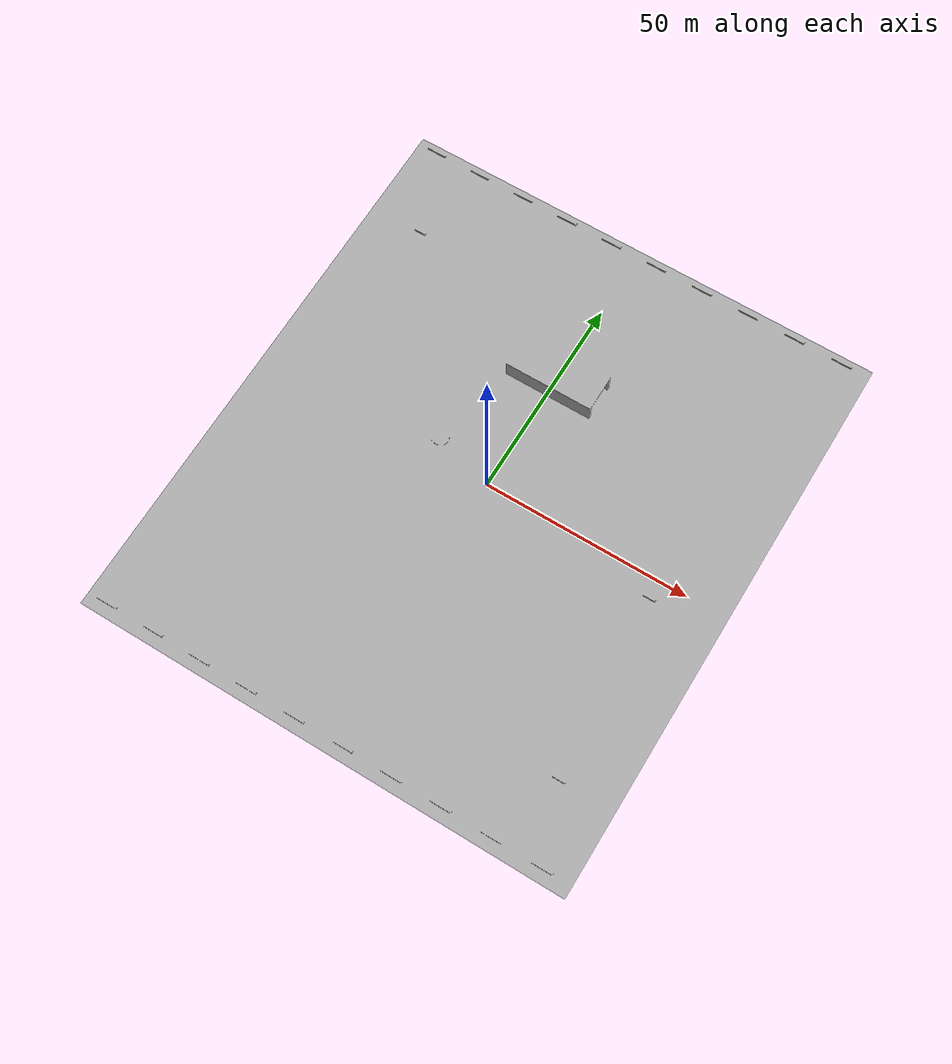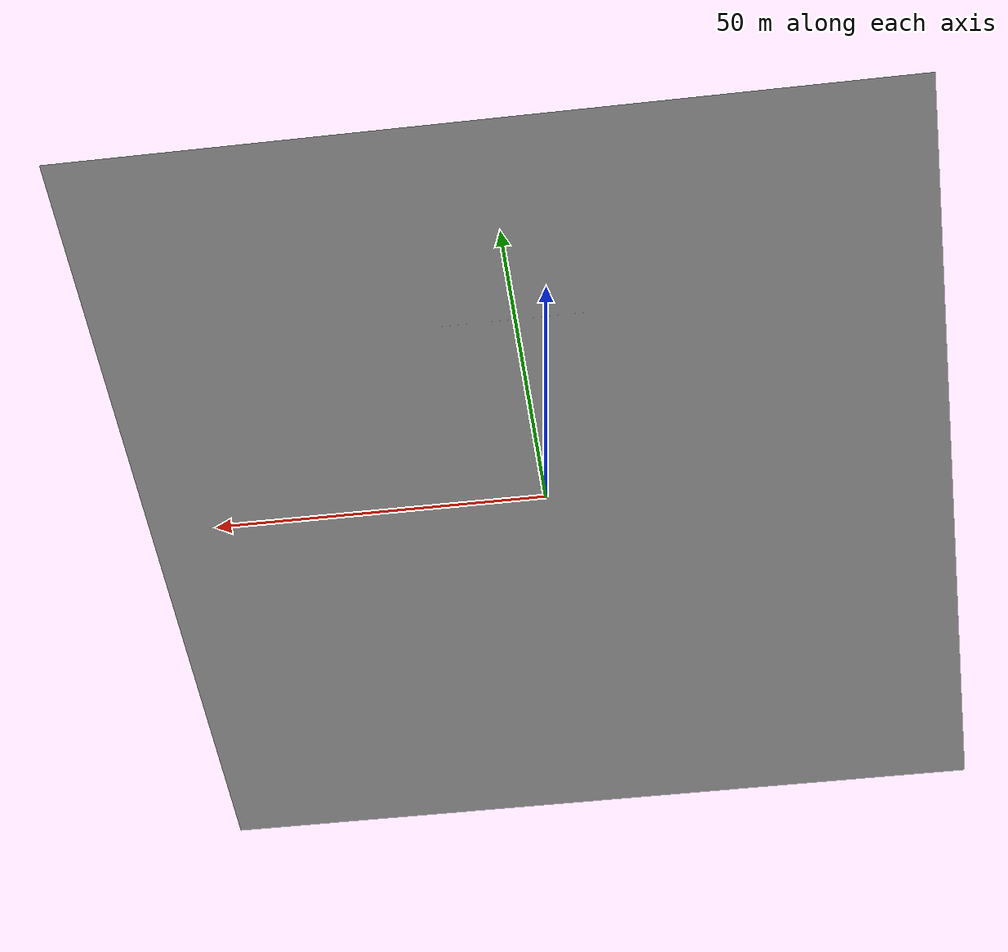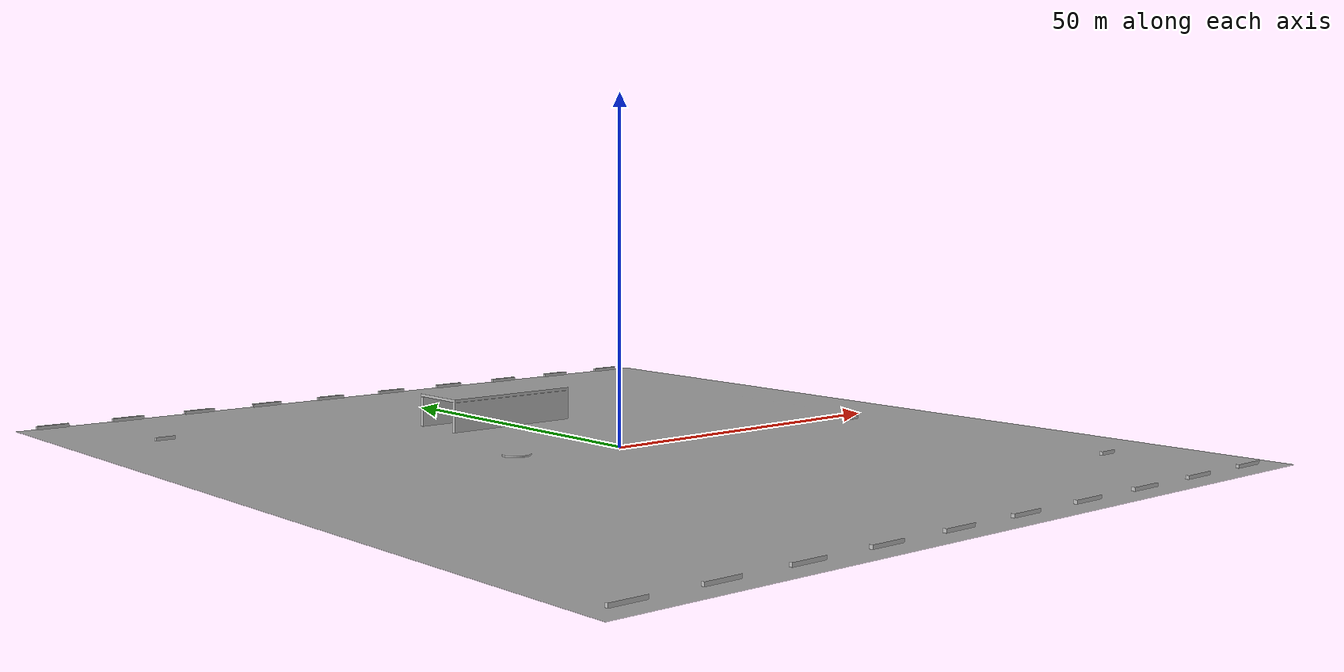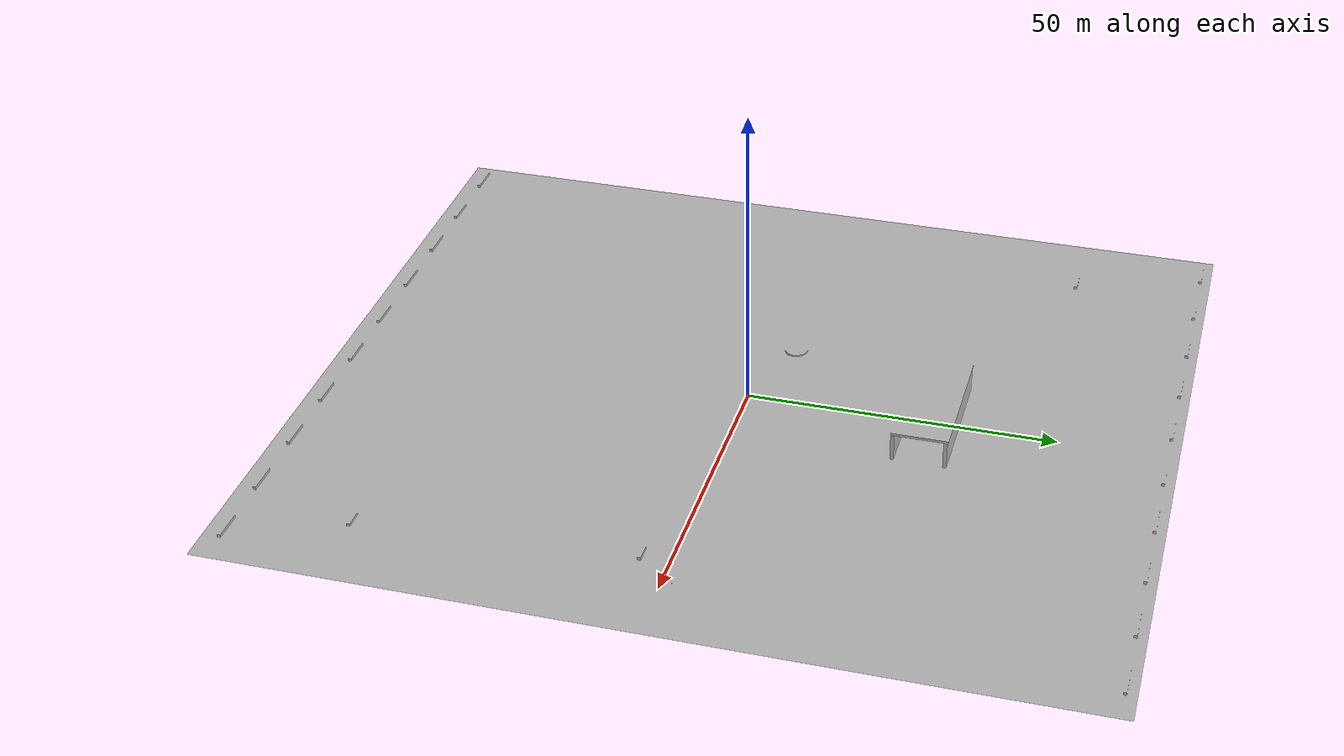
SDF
<?xml version="1.0" ?>
<sdf version="1.6">
  <model name="robotaksi_map">
    <static>true</static>
    <link name="link">

      <pose>0 0 0 1.5708 0 0</pose>

      <collision name="collision">
        <geometry>
          <mesh>
            <uri>model://robotaksi_map/meshes/RobotaksiMap.obj</uri>
          </mesh>
        </geometry>
      </collision>

      <visual name="visual">
        <geometry>
          <mesh>
            <uri>model://robotaksi_map/meshes/RobotaksiMap.obj</uri>
          </mesh>
        </geometry>
      </visual>

    </link>
  </model>
</sdf>
